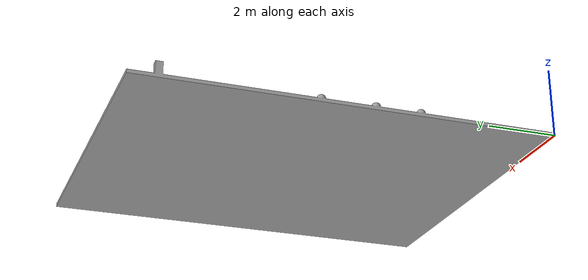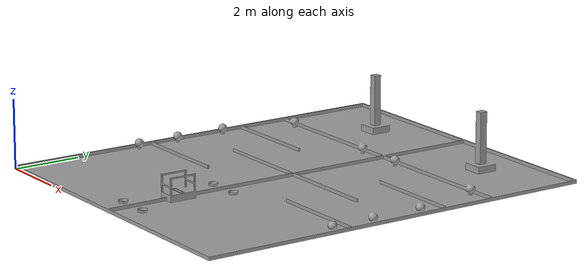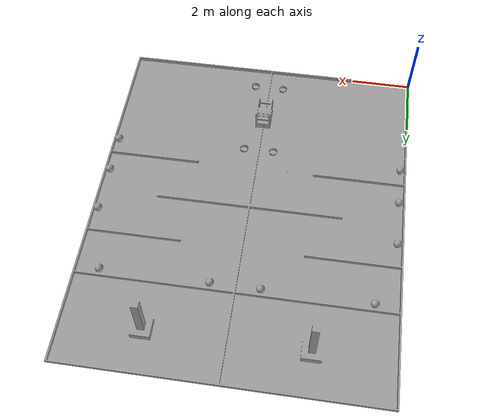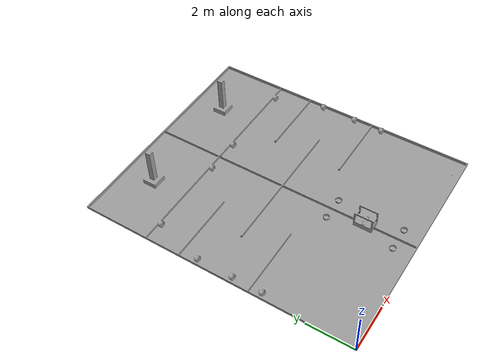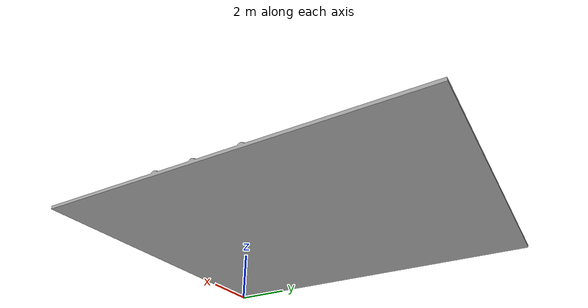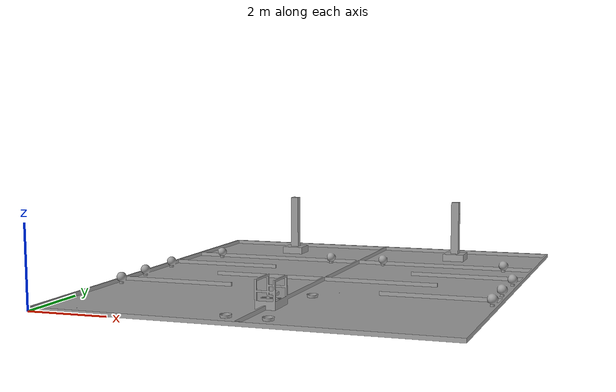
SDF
<?xml version="1.0" ?>
<sdf version="1.6">
  <model name="field">
    <static>true</static>
    <link name="link">
      <collision name="collision">
        <geometry>
          <mesh>
            <scale>1 1 1</scale>
            <uri>model://field/meshes/field.stl</uri>
          </mesh>
        </geometry>
        <surface>
          <friction>
            <ode>
              <mu>1.2</mu>
              <mu2>1.2</mu2>
            </ode>
          </friction>
        </surface>
      </collision>
      <visual name="visual">
        <geometry>
          <mesh>
            <scale>1 1 1</scale>
            <uri>model://field/meshes/field.dae</uri>
          </mesh>
        </geometry>
      </visual>
    </link>
  </model>
</sdf>
